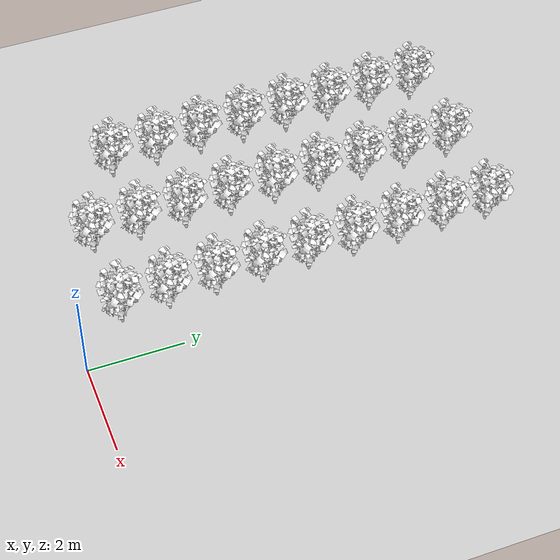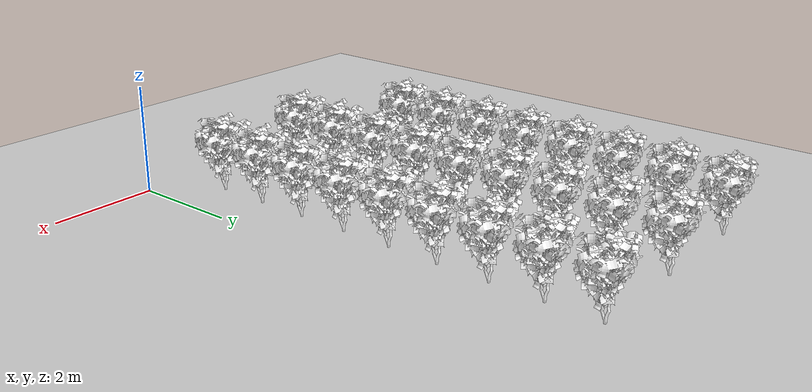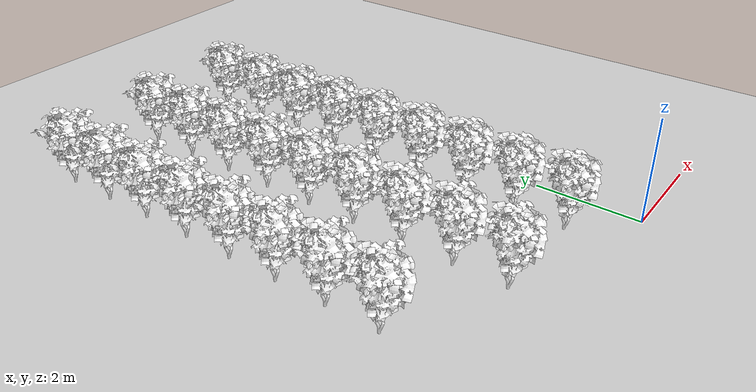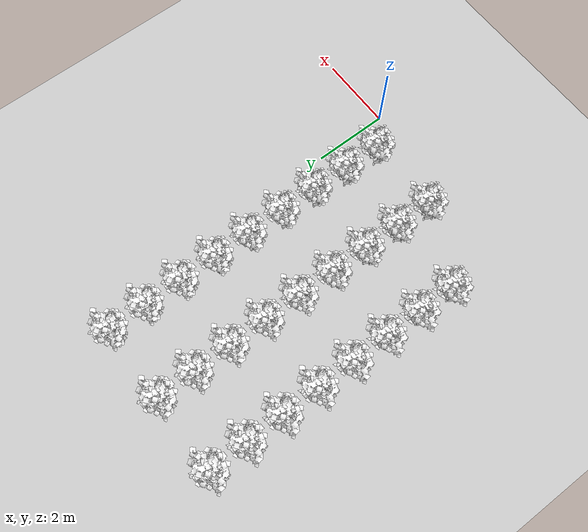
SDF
<sdf version="1.7">
 <world name="default">
  <include><uri>model://sun</uri></include>
  <model name="tree_5">
   <static>true</static>
   <link name="link">
    <visual name="trunk">
     <geometry><mesh><uri>model://meshes/Tree_1_Trunk.dae</uri></mesh></geometry>
     <material>
      <script>
       <uri>model://materials/scripts/</uri>
       <uri>model://materials/textures/</uri>
       <name>Vine/Bark</name>
      </script>
     </material>
    </visual>
    <visual name="leafa">
     <geometry><mesh><uri>model://meshes/Tree_1_Leaf_1.dae</uri></mesh></geometry>
     <material>
      <script>
       <uri>model://materials/scripts/</uri>
       <uri>model://materials/textures/</uri>
       <name>Vine/Leafa</name>
      </script>
     </material>
    </visual>
    <visual name="leafb">
     <geometry><mesh><uri>model://meshes/Tree_1_Leaf_2.dae</uri></mesh></geometry>
     <material>
      <script>
       <uri>model://materials/scripts/</uri>
       <uri>model://materials/textures/</uri>
       <name>Vine/Leafb</name>
      </script>
     </material>
    </visual>
    <visual name="leafc">
     <geometry><mesh><uri>model://meshes/Tree_1_Leaf_3.dae</uri></mesh></geometry>
     <material>
      <script>
       <uri>model://materials/scripts/</uri>
       <uri>model://materials/textures/</uri>
       <name>Vine/Leafc</name>
      </script>
     </material>
    </visual>
   </link>
   <pose>-5 2 -0.3 0 0 0</pose>
  </model>
  <model name="tree_6">
   <static>true</static>
   <link name="link">
    <visual name="trunk">
     <geometry><mesh><uri>model://meshes/Tree_1_Trunk.dae</uri></mesh></geometry>
     <material>
      <script>
       <uri>model://materials/scripts/</uri>
       <uri>model://materials/textures/</uri>
       <name>Vine/Bark</name>
      </script>
     </material>
    </visual>
    <visual name="leafa">
     <geometry><mesh><uri>model://meshes/Tree_1_Leaf_1.dae</uri></mesh></geometry>
     <material>
      <script>
       <uri>model://materials/scripts/</uri>
       <uri>model://materials/textures/</uri>
       <name>Vine/Leafa</name>
      </script>
     </material>
    </visual>
    <visual name="leafb">
     <geometry><mesh><uri>model://meshes/Tree_1_Leaf_2.dae</uri></mesh></geometry>
     <material>
      <script>
       <uri>model://materials/scripts/</uri>
       <uri>model://materials/textures/</uri>
       <name>Vine/Leafb</name>
      </script>
     </material>
    </visual>
    <visual name="leafc">
     <geometry><mesh><uri>model://meshes/Tree_1_Leaf_3.dae</uri></mesh></geometry>
     <material>
      <script>
       <uri>model://materials/scripts/</uri>
       <uri>model://materials/textures/</uri>
       <name>Vine/Leafc</name>
      </script>
     </material>
    </visual>
   </link>
   <pose>-5 3 -0.3 0 0 0</pose>
  </model>
  <model name="tree_7">
   <static>true</static>
   <link name="link">
    <visual name="trunk">
     <geometry><mesh><uri>model://meshes/Tree_1_Trunk.dae</uri></mesh></geometry>
     <material>
      <script>
       <uri>model://materials/scripts/</uri>
       <uri>model://materials/textures/</uri>
       <name>Vine/Bark</name>
      </script>
     </material>
    </visual>
    <visual name="leafa">
     <geometry><mesh><uri>model://meshes/Tree_1_Leaf_1.dae</uri></mesh></geometry>
     <material>
      <script>
       <uri>model://materials/scripts/</uri>
       <uri>model://materials/textures/</uri>
       <name>Vine/Leafa</name>
      </script>
     </material>
    </visual>
    <visual name="leafb">
     <geometry><mesh><uri>model://meshes/Tree_1_Leaf_2.dae</uri></mesh></geometry>
     <material>
      <script>
       <uri>model://materials/scripts/</uri>
       <uri>model://materials/textures/</uri>
       <name>Vine/Leafb</name>
      </script>
     </material>
    </visual>
    <visual name="leafc">
     <geometry><mesh><uri>model://meshes/Tree_1_Leaf_3.dae</uri></mesh></geometry>
     <material>
      <script>
       <uri>model://materials/scripts/</uri>
       <uri>model://materials/textures/</uri>
       <name>Vine/Leafc</name>
      </script>
     </material>
    </visual>
   </link>
   <pose>-5 4 -0.3 0 0 0</pose>
  </model>
  <model name="tree_8">
   <static>true</static>
   <link name="link">
    <visual name="trunk">
     <geometry><mesh><uri>model://meshes/Tree_1_Trunk.dae</uri></mesh></geometry>
     <material>
      <script>
       <uri>model://materials/scripts/</uri>
       <uri>model://materials/textures/</uri>
       <name>Vine/Bark</name>
      </script>
     </material>
    </visual>
    <visual name="leafa">
     <geometry><mesh><uri>model://meshes/Tree_1_Leaf_1.dae</uri></mesh></geometry>
     <material>
      <script>
       <uri>model://materials/scripts/</uri>
       <uri>model://materials/textures/</uri>
       <name>Vine/Leafa</name>
      </script>
     </material>
    </visual>
    <visual name="leafb">
     <geometry><mesh><uri>model://meshes/Tree_1_Leaf_2.dae</uri></mesh></geometry>
     <material>
      <script>
       <uri>model://materials/scripts/</uri>
       <uri>model://materials/textures/</uri>
       <name>Vine/Leafb</name>
      </script>
     </material>
    </visual>
    <visual name="leafc">
     <geometry><mesh><uri>model://meshes/Tree_1_Leaf_3.dae</uri></mesh></geometry>
     <material>
      <script>
       <uri>model://materials/scripts/</uri>
       <uri>model://materials/textures/</uri>
       <name>Vine/Leafc</name>
      </script>
     </material>
    </visual>
   </link>
   <pose>-5 5 -0.3 0 0 0</pose>
  </model>
  <model name="tree_9">
   <static>true</static>
   <link name="link">
    <visual name="trunk">
     <geometry><mesh><uri>model://meshes/Tree_1_Trunk.dae</uri></mesh></geometry>
     <material>
      <script>
       <uri>model://materials/scripts/</uri>
       <uri>model://materials/textures/</uri>
       <name>Vine/Bark</name>
      </script>
     </material>
    </visual>
    <visual name="leafa">
     <geometry><mesh><uri>model://meshes/Tree_1_Leaf_1.dae</uri></mesh></geometry>
     <material>
      <script>
       <uri>model://materials/scripts/</uri>
       <uri>model://materials/textures/</uri>
       <name>Vine/Leafa</name>
      </script>
     </material>
    </visual>
    <visual name="leafb">
     <geometry><mesh><uri>model://meshes/Tree_1_Leaf_2.dae</uri></mesh></geometry>
     <material>
      <script>
       <uri>model://materials/scripts/</uri>
       <uri>model://materials/textures/</uri>
       <name>Vine/Leafb</name>
      </script>
     </material>
    </visual>
    <visual name="leafc">
     <geometry><mesh><uri>model://meshes/Tree_1_Leaf_3.dae</uri></mesh></geometry>
     <material>
      <script>
       <uri>model://materials/scripts/</uri>
       <uri>model://materials/textures/</uri>
       <name>Vine/Leafc</name>
      </script>
     </material>
    </visual>
   </link>
   <pose>-5 6 -0.3 0 0 0</pose>
  </model>
  <model name="tree_10">
   <static>true</static>
   <link name="link">
    <visual name="trunk">
     <geometry><mesh><uri>model://meshes/Tree_1_Trunk.dae</uri></mesh></geometry>
     <material>
      <script>
       <uri>model://materials/scripts/</uri>
       <uri>model://materials/textures/</uri>
       <name>Vine/Bark</name>
      </script>
     </material>
    </visual>
    <visual name="leafa">
     <geometry><mesh><uri>model://meshes/Tree_1_Leaf_1.dae</uri></mesh></geometry>
     <material>
      <script>
       <uri>model://materials/scripts/</uri>
       <uri>model://materials/textures/</uri>
       <name>Vine/Leafa</name>
      </script>
     </material>
    </visual>
    <visual name="leafb">
     <geometry><mesh><uri>model://meshes/Tree_1_Leaf_2.dae</uri></mesh></geometry>
     <material>
      <script>
       <uri>model://materials/scripts/</uri>
       <uri>model://materials/textures/</uri>
       <name>Vine/Leafb</name>
      </script>
     </material>
    </visual>
    <visual name="leafc">
     <geometry><mesh><uri>model://meshes/Tree_1_Leaf_3.dae</uri></mesh></geometry>
     <material>
      <script>
       <uri>model://materials/scripts/</uri>
       <uri>model://materials/textures/</uri>
       <name>Vine/Leafc</name>
      </script>
     </material>
    </visual>
   </link>
   <pose>-5 7 -0.3 0 0 0</pose>
  </model>
  <model name="tree_11">
   <static>true</static>
   <link name="link">
    <visual name="trunk">
     <geometry><mesh><uri>model://meshes/Tree_1_Trunk.dae</uri></mesh></geometry>
     <material>
      <script>
       <uri>model://materials/scripts/</uri>
       <uri>model://materials/textures/</uri>
       <name>Vine/Bark</name>
      </script>
     </material>
    </visual>
    <visual name="leafa">
     <geometry><mesh><uri>model://meshes/Tree_1_Leaf_1.dae</uri></mesh></geometry>
     <material>
      <script>
       <uri>model://materials/scripts/</uri>
       <uri>model://materials/textures/</uri>
       <name>Vine/Leafa</name>
      </script>
     </material>
    </visual>
    <visual name="leafb">
     <geometry><mesh><uri>model://meshes/Tree_1_Leaf_2.dae</uri></mesh></geometry>
     <material>
      <script>
       <uri>model://materials/scripts/</uri>
       <uri>model://materials/textures/</uri>
       <name>Vine/Leafb</name>
      </script>
     </material>
    </visual>
    <visual name="leafc">
     <geometry><mesh><uri>model://meshes/Tree_1_Leaf_3.dae</uri></mesh></geometry>
     <material>
      <script>
       <uri>model://materials/scripts/</uri>
       <uri>model://materials/textures/</uri>
       <name>Vine/Leafc</name>
      </script>
     </material>
    </visual>
   </link>
   <pose>-5 8 -0.3 0 0 0</pose>
  </model>
  <model name="tree_12">
   <static>true</static>
   <link name="link">
    <visual name="trunk">
     <geometry><mesh><uri>model://meshes/Tree_1_Trunk.dae</uri></mesh></geometry>
     <material>
      <script>
       <uri>model://materials/scripts/</uri>
       <uri>model://materials/textures/</uri>
       <name>Vine/Bark</name>
      </script>
     </material>
    </visual>
    <visual name="leafa">
     <geometry><mesh><uri>model://meshes/Tree_1_Leaf_1.dae</uri></mesh></geometry>
     <material>
      <script>
       <uri>model://materials/scripts/</uri>
       <uri>model://materials/textures/</uri>
       <name>Vine/Leafa</name>
      </script>
     </material>
    </visual>
    <visual name="leafb">
     <geometry><mesh><uri>model://meshes/Tree_1_Leaf_2.dae</uri></mesh></geometry>
     <material>
      <script>
       <uri>model://materials/scripts/</uri>
       <uri>model://materials/textures/</uri>
       <name>Vine/Leafb</name>
      </script>
     </material>
    </visual>
    <visual name="leafc">
     <geometry><mesh><uri>model://meshes/Tree_1_Leaf_3.dae</uri></mesh></geometry>
     <material>
      <script>
       <uri>model://materials/scripts/</uri>
       <uri>model://materials/textures/</uri>
       <name>Vine/Leafc</name>
      </script>
     </material>
    </visual>
   </link>
   <pose>-5 9 -0.3 0 0 0</pose>
  </model>
  <model name="tree_17">
   <static>true</static>
   <link name="link">
    <visual name="trunk">
     <geometry><mesh><uri>model://meshes/Tree_1_Trunk.dae</uri></mesh></geometry>
     <material>
      <script>
       <uri>model://materials/scripts/</uri>
       <uri>model://materials/textures/</uri>
       <name>Vine/Bark</name>
      </script>
     </material>
    </visual>
    <visual name="leafa">
     <geometry><mesh><uri>model://meshes/Tree_1_Leaf_1.dae</uri></mesh></geometry>
     <material>
      <script>
       <uri>model://materials/scripts/</uri>
       <uri>model://materials/textures/</uri>
       <name>Vine/Leafa</name>
      </script>
     </material>
    </visual>
    <visual name="leafb">
     <geometry><mesh><uri>model://meshes/Tree_1_Leaf_2.dae</uri></mesh></geometry>
     <material>
      <script>
       <uri>model://materials/scripts/</uri>
       <uri>model://materials/textures/</uri>
       <name>Vine/Leafb</name>
      </script>
     </material>
    </visual>
    <visual name="leafc">
     <geometry><mesh><uri>model://meshes/Tree_1_Leaf_3.dae</uri></mesh></geometry>
     <material>
      <script>
       <uri>model://materials/scripts/</uri>
       <uri>model://materials/textures/</uri>
       <name>Vine/Leafc</name>
      </script>
     </material>
    </visual>
   </link>
   <pose>-3 1 -0.3 0 0 0</pose>
  </model>
  <model name="tree_18">
   <static>true</static>
   <link name="link">
    <visual name="trunk">
     <geometry><mesh><uri>model://meshes/Tree_1_Trunk.dae</uri></mesh></geometry>
     <material>
      <script>
       <uri>model://materials/scripts/</uri>
       <uri>model://materials/textures/</uri>
       <name>Vine/Bark</name>
      </script>
     </material>
    </visual>
    <visual name="leafa">
     <geometry><mesh><uri>model://meshes/Tree_1_Leaf_1.dae</uri></mesh></geometry>
     <material>
      <script>
       <uri>model://materials/scripts/</uri>
       <uri>model://materials/textures/</uri>
       <name>Vine/Leafa</name>
      </script>
     </material>
    </visual>
    <visual name="leafb">
     <geometry><mesh><uri>model://meshes/Tree_1_Leaf_2.dae</uri></mesh></geometry>
     <material>
      <script>
       <uri>model://materials/scripts/</uri>
       <uri>model://materials/textures/</uri>
       <name>Vine/Leafb</name>
      </script>
     </material>
    </visual>
    <visual name="leafc">
     <geometry><mesh><uri>model://meshes/Tree_1_Leaf_3.dae</uri></mesh></geometry>
     <material>
      <script>
       <uri>model://materials/scripts/</uri>
       <uri>model://materials/textures/</uri>
       <name>Vine/Leafc</name>
      </script>
     </material>
    </visual>
   </link>
   <pose>-3 2 -0.3 0 0 0</pose>
  </model>
  <model name="tree_19">
   <static>true</static>
   <link name="link">
    <visual name="trunk">
     <geometry><mesh><uri>model://meshes/Tree_1_Trunk.dae</uri></mesh></geometry>
     <material>
      <script>
       <uri>model://materials/scripts/</uri>
       <uri>model://materials/textures/</uri>
       <name>Vine/Bark</name>
      </script>
     </material>
    </visual>
    <visual name="leafa">
     <geometry><mesh><uri>model://meshes/Tree_1_Leaf_1.dae</uri></mesh></geometry>
     <material>
      <script>
       <uri>model://materials/scripts/</uri>
       <uri>model://materials/textures/</uri>
       <name>Vine/Leafa</name>
      </script>
     </material>
    </visual>
    <visual name="leafb">
     <geometry><mesh><uri>model://meshes/Tree_1_Leaf_2.dae</uri></mesh></geometry>
     <material>
      <script>
       <uri>model://materials/scripts/</uri>
       <uri>model://materials/textures/</uri>
       <name>Vine/Leafb</name>
      </script>
     </material>
    </visual>
    <visual name="leafc">
     <geometry><mesh><uri>model://meshes/Tree_1_Leaf_3.dae</uri></mesh></geometry>
     <material>
      <script>
       <uri>model://materials/scripts/</uri>
       <uri>model://materials/textures/</uri>
       <name>Vine/Leafc</name>
      </script>
     </material>
    </visual>
   </link>
   <pose>-3 3 -0.3 0 0 0</pose>
  </model>
  <model name="tree_20">
   <static>true</static>
   <link name="link">
    <visual name="trunk">
     <geometry><mesh><uri>model://meshes/Tree_1_Trunk.dae</uri></mesh></geometry>
     <material>
      <script>
       <uri>model://materials/scripts/</uri>
       <uri>model://materials/textures/</uri>
       <name>Vine/Bark</name>
      </script>
     </material>
    </visual>
    <visual name="leafa">
     <geometry><mesh><uri>model://meshes/Tree_1_Leaf_1.dae</uri></mesh></geometry>
     <material>
      <script>
       <uri>model://materials/scripts/</uri>
       <uri>model://materials/textures/</uri>
       <name>Vine/Leafa</name>
      </script>
     </material>
    </visual>
    <visual name="leafb">
     <geometry><mesh><uri>model://meshes/Tree_1_Leaf_2.dae</uri></mesh></geometry>
     <material>
      <script>
       <uri>model://materials/scripts/</uri>
       <uri>model://materials/textures/</uri>
       <name>Vine/Leafb</name>
      </script>
     </material>
    </visual>
    <visual name="leafc">
     <geometry><mesh><uri>model://meshes/Tree_1_Leaf_3.dae</uri></mesh></geometry>
     <material>
      <script>
       <uri>model://materials/scripts/</uri>
       <uri>model://materials/textures/</uri>
       <name>Vine/Leafc</name>
      </script>
     </material>
    </visual>
   </link>
   <pose>-3 4 -0.3 0 0 0</pose>
  </model>
  <model name="tree_21">
   <static>true</static>
   <link name="link">
    <visual name="trunk">
     <geometry><mesh><uri>model://meshes/Tree_1_Trunk.dae</uri></mesh></geometry>
     <material>
      <script>
       <uri>model://materials/scripts/</uri>
       <uri>model://materials/textures/</uri>
       <name>Vine/Bark</name>
      </script>
     </material>
    </visual>
    <visual name="leafa">
     <geometry><mesh><uri>model://meshes/Tree_1_Leaf_1.dae</uri></mesh></geometry>
     <material>
      <script>
       <uri>model://materials/scripts/</uri>
       <uri>model://materials/textures/</uri>
       <name>Vine/Leafa</name>
      </script>
     </material>
    </visual>
    <visual name="leafb">
     <geometry><mesh><uri>model://meshes/Tree_1_Leaf_2.dae</uri></mesh></geometry>
     <material>
      <script>
       <uri>model://materials/scripts/</uri>
       <uri>model://materials/textures/</uri>
       <name>Vine/Leafb</name>
      </script>
     </material>
    </visual>
    <visual name="leafc">
     <geometry><mesh><uri>model://meshes/Tree_1_Leaf_3.dae</uri></mesh></geometry>
     <material>
      <script>
       <uri>model://materials/scripts/</uri>
       <uri>model://materials/textures/</uri>
       <name>Vine/Leafc</name>
      </script>
     </material>
    </visual>
   </link>
   <pose>-3 5 -0.3 0 0 0</pose>
  </model>
  <model name="tree_22">
   <static>true</static>
   <link name="link">
    <visual name="trunk">
     <geometry><mesh><uri>model://meshes/Tree_1_Trunk.dae</uri></mesh></geometry>
     <material>
      <script>
       <uri>model://materials/scripts/</uri>
       <uri>model://materials/textures/</uri>
       <name>Vine/Bark</name>
      </script>
     </material>
    </visual>
    <visual name="leafa">
     <geometry><mesh><uri>model://meshes/Tree_1_Leaf_1.dae</uri></mesh></geometry>
     <material>
      <script>
       <uri>model://materials/scripts/</uri>
       <uri>model://materials/textures/</uri>
       <name>Vine/Leafa</name>
      </script>
     </material>
    </visual>
    <visual name="leafb">
     <geometry><mesh><uri>model://meshes/Tree_1_Leaf_2.dae</uri></mesh></geometry>
     <material>
      <script>
       <uri>model://materials/scripts/</uri>
       <uri>model://materials/textures/</uri>
       <name>Vine/Leafb</name>
      </script>
     </material>
    </visual>
    <visual name="leafc">
     <geometry><mesh><uri>model://meshes/Tree_1_Leaf_3.dae</uri></mesh></geometry>
     <material>
      <script>
       <uri>model://materials/scripts/</uri>
       <uri>model://materials/textures/</uri>
       <name>Vine/Leafc</name>
      </script>
     </material>
    </visual>
   </link>
   <pose>-3 6 -0.3 0 0 0</pose>
  </model>
  <model name="tree_23">
   <static>true</static>
   <link name="link">
    <visual name="trunk">
     <geometry><mesh><uri>model://meshes/Tree_1_Trunk.dae</uri></mesh></geometry>
     <material>
      <script>
       <uri>model://materials/scripts/</uri>
       <uri>model://materials/textures/</uri>
       <name>Vine/Bark</name>
      </script>
     </material>
    </visual>
    <visual name="leafa">
     <geometry><mesh><uri>model://meshes/Tree_1_Leaf_1.dae</uri></mesh></geometry>
     <material>
      <script>
       <uri>model://materials/scripts/</uri>
       <uri>model://materials/textures/</uri>
       <name>Vine/Leafa</name>
      </script>
     </material>
    </visual>
    <visual name="leafb">
     <geometry><mesh><uri>model://meshes/Tree_1_Leaf_2.dae</uri></mesh></geometry>
     <material>
      <script>
       <uri>model://materials/scripts/</uri>
       <uri>model://materials/textures/</uri>
       <name>Vine/Leafb</name>
      </script>
     </material>
    </visual>
    <visual name="leafc">
     <geometry><mesh><uri>model://meshes/Tree_1_Leaf_3.dae</uri></mesh></geometry>
     <material>
      <script>
       <uri>model://materials/scripts/</uri>
       <uri>model://materials/textures/</uri>
       <name>Vine/Leafc</name>
      </script>
     </material>
    </visual>
   </link>
   <pose>-3 7 -0.3 0 0 0</pose>
  </model>
  <model name="tree_24">
   <static>true</static>
   <link name="link">
    <visual name="trunk">
     <geometry><mesh><uri>model://meshes/Tree_1_Trunk.dae</uri></mesh></geometry>
     <material>
      <script>
       <uri>model://materials/scripts/</uri>
       <uri>model://materials/textures/</uri>
       <name>Vine/Bark</name>
      </script>
     </material>
    </visual>
    <visual name="leafa">
     <geometry><mesh><uri>model://meshes/Tree_1_Leaf_1.dae</uri></mesh></geometry>
     <material>
      <script>
       <uri>model://materials/scripts/</uri>
       <uri>model://materials/textures/</uri>
       <name>Vine/Leafa</name>
      </script>
     </material>
    </visual>
    <visual name="leafb">
     <geometry><mesh><uri>model://meshes/Tree_1_Leaf_2.dae</uri></mesh></geometry>
     <material>
      <script>
       <uri>model://materials/scripts/</uri>
       <uri>model://materials/textures/</uri>
       <name>Vine/Leafb</name>
      </script>
     </material>
    </visual>
    <visual name="leafc">
     <geometry><mesh><uri>model://meshes/Tree_1_Leaf_3.dae</uri></mesh></geometry>
     <material>
      <script>
       <uri>model://materials/scripts/</uri>
       <uri>model://materials/textures/</uri>
       <name>Vine/Leafc</name>
      </script>
     </material>
    </visual>
   </link>
   <pose>-3 8 -0.3 0 0 0</pose>
  </model>
  <model name="tree_25">
   <static>true</static>
   <link name="link">
    <visual name="trunk">
     <geometry><mesh><uri>model://meshes/Tree_1_Trunk.dae</uri></mesh></geometry>
     <material>
      <script>
       <uri>model://materials/scripts/</uri>
       <uri>model://materials/textures/</uri>
       <name>Vine/Bark</name>
      </script>
     </material>
    </visual>
    <visual name="leafa">
     <geometry><mesh><uri>model://meshes/Tree_1_Leaf_1.dae</uri></mesh></geometry>
     <material>
      <script>
       <uri>model://materials/scripts/</uri>
       <uri>model://materials/textures/</uri>
       <name>Vine/Leafa</name>
      </script>
     </material>
    </visual>
    <visual name="leafb">
     <geometry><mesh><uri>model://meshes/Tree_1_Leaf_2.dae</uri></mesh></geometry>
     <material>
      <script>
       <uri>model://materials/scripts/</uri>
       <uri>model://materials/textures/</uri>
       <name>Vine/Leafb</name>
      </script>
     </material>
    </visual>
    <visual name="leafc">
     <geometry><mesh><uri>model://meshes/Tree_1_Leaf_3.dae</uri></mesh></geometry>
     <material>
      <script>
       <uri>model://materials/scripts/</uri>
       <uri>model://materials/textures/</uri>
       <name>Vine/Leafc</name>
      </script>
     </material>
    </visual>
   </link>
   <pose>-3 9 -0.3 0 0 0</pose>
  </model>
  <model name="tree_30">
   <static>true</static>
   <link name="link">
    <visual name="trunk">
     <geometry><mesh><uri>model://meshes/Tree_1_Trunk.dae</uri></mesh></geometry>
     <material>
      <script>
       <uri>model://materials/scripts/</uri>
       <uri>model://materials/textures/</uri>
       <name>Vine/Bark</name>
      </script>
     </material>
    </visual>
    <visual name="leafa">
     <geometry><mesh><uri>model://meshes/Tree_1_Leaf_1.dae</uri></mesh></geometry>
     <material>
      <script>
       <uri>model://materials/scripts/</uri>
       <uri>model://materials/textures/</uri>
       <name>Vine/Leafa</name>
      </script>
     </material>
    </visual>
    <visual name="leafb">
     <geometry><mesh><uri>model://meshes/Tree_1_Leaf_2.dae</uri></mesh></geometry>
     <material>
      <script>
       <uri>model://materials/scripts/</uri>
       <uri>model://materials/textures/</uri>
       <name>Vine/Leafb</name>
      </script>
     </material>
    </visual>
    <visual name="leafc">
     <geometry><mesh><uri>model://meshes/Tree_1_Leaf_3.dae</uri></mesh></geometry>
     <material>
      <script>
       <uri>model://materials/scripts/</uri>
       <uri>model://materials/textures/</uri>
       <name>Vine/Leafc</name>
      </script>
     </material>
    </visual>
   </link>
   <pose>-1 1 -0.3 0 0 0</pose>
  </model>
  <model name="tree_31">
   <static>true</static>
   <link name="link">
    <visual name="trunk">
     <geometry><mesh><uri>model://meshes/Tree_1_Trunk.dae</uri></mesh></geometry>
     <material>
      <script>
       <uri>model://materials/scripts/</uri>
       <uri>model://materials/textures/</uri>
       <name>Vine/Bark</name>
      </script>
     </material>
    </visual>
    <visual name="leafa">
     <geometry><mesh><uri>model://meshes/Tree_1_Leaf_1.dae</uri></mesh></geometry>
     <material>
      <script>
       <uri>model://materials/scripts/</uri>
       <uri>model://materials/textures/</uri>
       <name>Vine/Leafa</name>
      </script>
     </material>
    </visual>
    <visual name="leafb">
     <geometry><mesh><uri>model://meshes/Tree_1_Leaf_2.dae</uri></mesh></geometry>
     <material>
      <script>
       <uri>model://materials/scripts/</uri>
       <uri>model://materials/textures/</uri>
       <name>Vine/Leafb</name>
      </script>
     </material>
    </visual>
    <visual name="leafc">
     <geometry><mesh><uri>model://meshes/Tree_1_Leaf_3.dae</uri></mesh></geometry>
     <material>
      <script>
       <uri>model://materials/scripts/</uri>
       <uri>model://materials/textures/</uri>
       <name>Vine/Leafc</name>
      </script>
     </material>
    </visual>
   </link>
   <pose>-1 2 -0.3 0 0 0</pose>
  </model>
  <model name="tree_32">
   <static>true</static>
   <link name="link">
    <visual name="trunk">
     <geometry><mesh><uri>model://meshes/Tree_1_Trunk.dae</uri></mesh></geometry>
     <material>
      <script>
       <uri>model://materials/scripts/</uri>
       <uri>model://materials/textures/</uri>
       <name>Vine/Bark</name>
      </script>
     </material>
    </visual>
    <visual name="leafa">
     <geometry><mesh><uri>model://meshes/Tree_1_Leaf_1.dae</uri></mesh></geometry>
     <material>
      <script>
       <uri>model://materials/scripts/</uri>
       <uri>model://materials/textures/</uri>
       <name>Vine/Leafa</name>
      </script>
     </material>
    </visual>
    <visual name="leafb">
     <geometry><mesh><uri>model://meshes/Tree_1_Leaf_2.dae</uri></mesh></geometry>
     <material>
      <script>
       <uri>model://materials/scripts/</uri>
       <uri>model://materials/textures/</uri>
       <name>Vine/Leafb</name>
      </script>
     </material>
    </visual>
    <visual name="leafc">
     <geometry><mesh><uri>model://meshes/Tree_1_Leaf_3.dae</uri></mesh></geometry>
     <material>
      <script>
       <uri>model://materials/scripts/</uri>
       <uri>model://materials/textures/</uri>
       <name>Vine/Leafc</name>
      </script>
     </material>
    </visual>
   </link>
   <pose>-1 3 -0.3 0 0 0</pose>
  </model>
  <model name="tree_33">
   <static>true</static>
   <link name="link">
    <visual name="trunk">
     <geometry><mesh><uri>model://meshes/Tree_1_Trunk.dae</uri></mesh></geometry>
     <material>
      <script>
       <uri>model://materials/scripts/</uri>
       <uri>model://materials/textures/</uri>
       <name>Vine/Bark</name>
      </script>
     </material>
    </visual>
    <visual name="leafa">
     <geometry><mesh><uri>model://meshes/Tree_1_Leaf_1.dae</uri></mesh></geometry>
     <material>
      <script>
       <uri>model://materials/scripts/</uri>
       <uri>model://materials/textures/</uri>
       <name>Vine/Leafa</name>
      </script>
     </material>
    </visual>
    <visual name="leafb">
     <geometry><mesh><uri>model://meshes/Tree_1_Leaf_2.dae</uri></mesh></geometry>
     <material>
      <script>
       <uri>model://materials/scripts/</uri>
       <uri>model://materials/textures/</uri>
       <name>Vine/Leafb</name>
      </script>
     </material>
    </visual>
    <visual name="leafc">
     <geometry><mesh><uri>model://meshes/Tree_1_Leaf_3.dae</uri></mesh></geometry>
     <material>
      <script>
       <uri>model://materials/scripts/</uri>
       <uri>model://materials/textures/</uri>
       <name>Vine/Leafc</name>
      </script>
     </material>
    </visual>
   </link>
   <pose>-1 4 -0.3 0 0 0</pose>
  </model>
  <model name="tree_34">
   <static>true</static>
   <link name="link">
    <visual name="trunk">
     <geometry><mesh><uri>model://meshes/Tree_1_Trunk.dae</uri></mesh></geometry>
     <material>
      <script>
       <uri>model://materials/scripts/</uri>
       <uri>model://materials/textures/</uri>
       <name>Vine/Bark</name>
      </script>
     </material>
    </visual>
    <visual name="leafa">
     <geometry><mesh><uri>model://meshes/Tree_1_Leaf_1.dae</uri></mesh></geometry>
     <material>
      <script>
       <uri>model://materials/scripts/</uri>
       <uri>model://materials/textures/</uri>
       <name>Vine/Leafa</name>
      </script>
     </material>
    </visual>
    <visual name="leafb">
     <geometry><mesh><uri>model://meshes/Tree_1_Leaf_2.dae</uri></mesh></geometry>
     <material>
      <script>
       <uri>model://materials/scripts/</uri>
       <uri>model://materials/textures/</uri>
       <name>Vine/Leafb</name>
      </script>
     </material>
    </visual>
    <visual name="leafc">
     <geometry><mesh><uri>model://meshes/Tree_1_Leaf_3.dae</uri></mesh></geometry>
     <material>
      <script>
       <uri>model://materials/scripts/</uri>
       <uri>model://materials/textures/</uri>
       <name>Vine/Leafc</name>
      </script>
     </material>
    </visual>
   </link>
   <pose>-1 5 -0.3 0 0 0</pose>
  </model>
  <model name="tree_35">
   <static>true</static>
   <link name="link">
    <visual name="trunk">
     <geometry><mesh><uri>model://meshes/Tree_1_Trunk.dae</uri></mesh></geometry>
     <material>
      <script>
       <uri>model://materials/scripts/</uri>
       <uri>model://materials/textures/</uri>
       <name>Vine/Bark</name>
      </script>
     </material>
    </visual>
    <visual name="leafa">
     <geometry><mesh><uri>model://meshes/Tree_1_Leaf_1.dae</uri></mesh></geometry>
     <material>
      <script>
       <uri>model://materials/scripts/</uri>
       <uri>model://materials/textures/</uri>
       <name>Vine/Leafa</name>
      </script>
     </material>
    </visual>
    <visual name="leafb">
     <geometry><mesh><uri>model://meshes/Tree_1_Leaf_2.dae</uri></mesh></geometry>
     <material>
      <script>
       <uri>model://materials/scripts/</uri>
       <uri>model://materials/textures/</uri>
       <name>Vine/Leafb</name>
      </script>
     </material>
    </visual>
    <visual name="leafc">
     <geometry><mesh><uri>model://meshes/Tree_1_Leaf_3.dae</uri></mesh></geometry>
     <material>
      <script>
       <uri>model://materials/scripts/</uri>
       <uri>model://materials/textures/</uri>
       <name>Vine/Leafc</name>
      </script>
     </material>
    </visual>
   </link>
   <pose>-1 6 -0.3 0 0 0</pose>
  </model>
  <model name="tree_36">
   <static>true</static>
   <link name="link">
    <visual name="trunk">
     <geometry><mesh><uri>model://meshes/Tree_1_Trunk.dae</uri></mesh></geometry>
     <material>
      <script>
       <uri>model://materials/scripts/</uri>
       <uri>model://materials/textures/</uri>
       <name>Vine/Bark</name>
      </script>
     </material>
    </visual>
    <visual name="leafa">
     <geometry><mesh><uri>model://meshes/Tree_1_Leaf_1.dae</uri></mesh></geometry>
     <material>
      <script>
       <uri>model://materials/scripts/</uri>
       <uri>model://materials/textures/</uri>
       <name>Vine/Leafa</name>
      </script>
     </material>
    </visual>
    <visual name="leafb">
     <geometry><mesh><uri>model://meshes/Tree_1_Leaf_2.dae</uri></mesh></geometry>
     <material>
      <script>
       <uri>model://materials/scripts/</uri>
       <uri>model://materials/textures/</uri>
       <name>Vine/Leafb</name>
      </script>
     </material>
    </visual>
    <visual name="leafc">
     <geometry><mesh><uri>model://meshes/Tree_1_Leaf_3.dae</uri></mesh></geometry>
     <material>
      <script>
       <uri>model://materials/scripts/</uri>
       <uri>model://materials/textures/</uri>
       <name>Vine/Leafc</name>
      </script>
     </material>
    </visual>
   </link>
   <pose>-1 7 -0.3 0 0 0</pose>
  </model>
  <model name="tree_37">
   <static>true</static>
   <link name="link">
    <visual name="trunk">
     <geometry><mesh><uri>model://meshes/Tree_1_Trunk.dae</uri></mesh></geometry>
     <material>
      <script>
       <uri>model://materials/scripts/</uri>
       <uri>model://materials/textures/</uri>
       <name>Vine/Bark</name>
      </script>
     </material>
    </visual>
    <visual name="leafa">
     <geometry><mesh><uri>model://meshes/Tree_1_Leaf_1.dae</uri></mesh></geometry>
     <material>
      <script>
       <uri>model://materials/scripts/</uri>
       <uri>model://materials/textures/</uri>
       <name>Vine/Leafa</name>
      </script>
     </material>
    </visual>
    <visual name="leafb">
     <geometry><mesh><uri>model://meshes/Tree_1_Leaf_2.dae</uri></mesh></geometry>
     <material>
      <script>
       <uri>model://materials/scripts/</uri>
       <uri>model://materials/textures/</uri>
       <name>Vine/Leafb</name>
      </script>
     </material>
    </visual>
    <visual name="leafc">
     <geometry><mesh><uri>model://meshes/Tree_1_Leaf_3.dae</uri></mesh></geometry>
     <material>
      <script>
       <uri>model://materials/scripts/</uri>
       <uri>model://materials/textures/</uri>
       <name>Vine/Leafc</name>
      </script>
     </material>
    </visual>
   </link>
   <pose>-1 8 -0.3 0 0 0</pose>
  </model>
  <model name="tree_38">
   <static>true</static>
   <link name="link">
    <visual name="trunk">
     <geometry><mesh><uri>model://meshes/Tree_1_Trunk.dae</uri></mesh></geometry>
     <material>
      <script>
       <uri>model://materials/scripts/</uri>
       <uri>model://materials/textures/</uri>
       <name>Vine/Bark</name>
      </script>
     </material>
    </visual>
    <visual name="leafa">
     <geometry><mesh><uri>model://meshes/Tree_1_Leaf_1.dae</uri></mesh></geometry>
     <material>
      <script>
       <uri>model://materials/scripts/</uri>
       <uri>model://materials/textures/</uri>
       <name>Vine/Leafa</name>
      </script>
     </material>
    </visual>
    <visual name="leafb">
     <geometry><mesh><uri>model://meshes/Tree_1_Leaf_2.dae</uri></mesh></geometry>
     <material>
      <script>
       <uri>model://materials/scripts/</uri>
       <uri>model://materials/textures/</uri>
       <name>Vine/Leafb</name>
      </script>
     </material>
    </visual>
    <visual name="leafc">
     <geometry><mesh><uri>model://meshes/Tree_1_Leaf_3.dae</uri></mesh></geometry>
     <material>
      <script>
       <uri>model://materials/scripts/</uri>
       <uri>model://materials/textures/</uri>
       <name>Vine/Leafc</name>
      </script>
     </material>
    </visual>
   </link>
   <pose>-1 9 -0.3 0 0 0</pose>
  </model>
  <model name="ground_plane">
   <static>true</static>
   <link name="link">
    <collision name="collision">
     <geometry><plane><normal>0 0 1</normal><size>30 30</size></plane></geometry>
    </collision>
    <visual name="visual">
     <geometry><plane><normal>0 0 1</normal><size>30 30</size></plane></geometry>
     <material>
      <script><uri>model://materials/scripts/</uri><uri>model://materials/textures/</uri><name>Plane</name></script>
     </material>
    </visual>
   </link>
  </model>
 </world>
</sdf>
